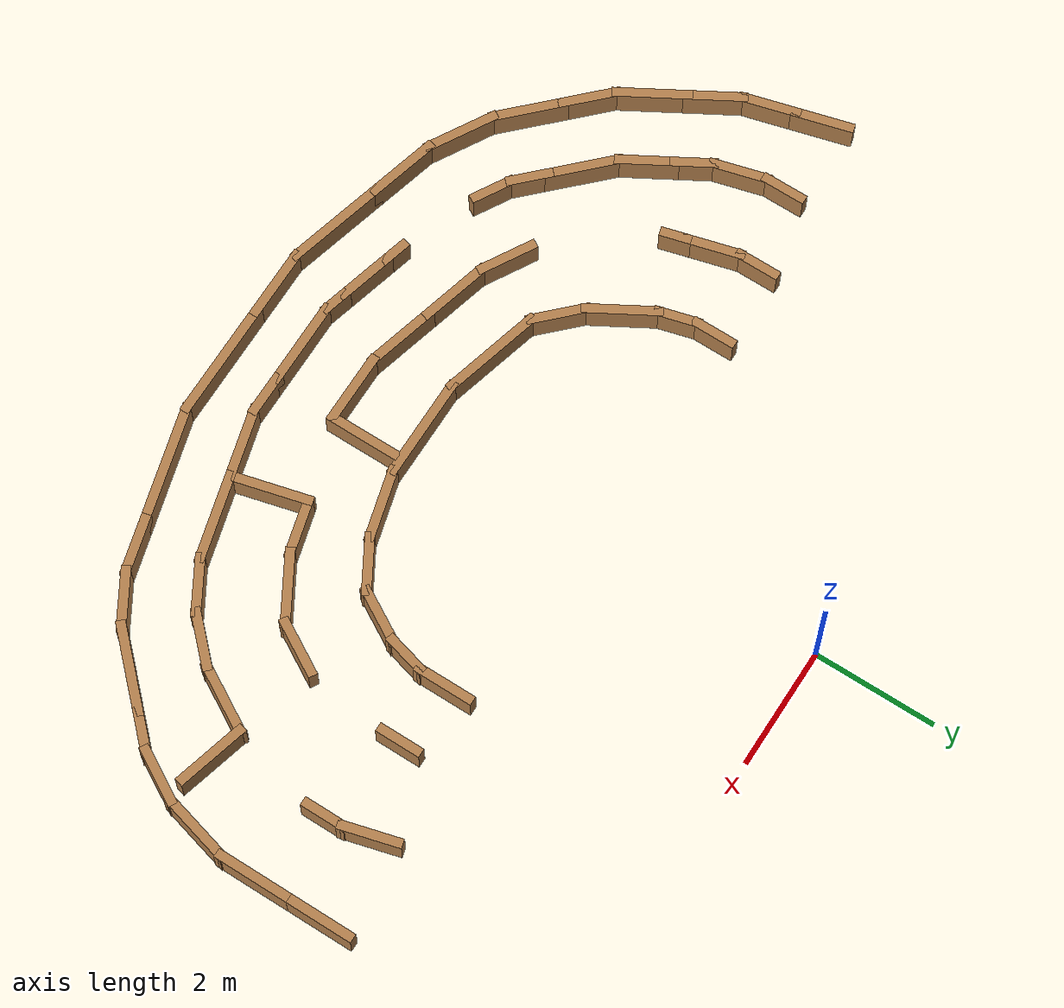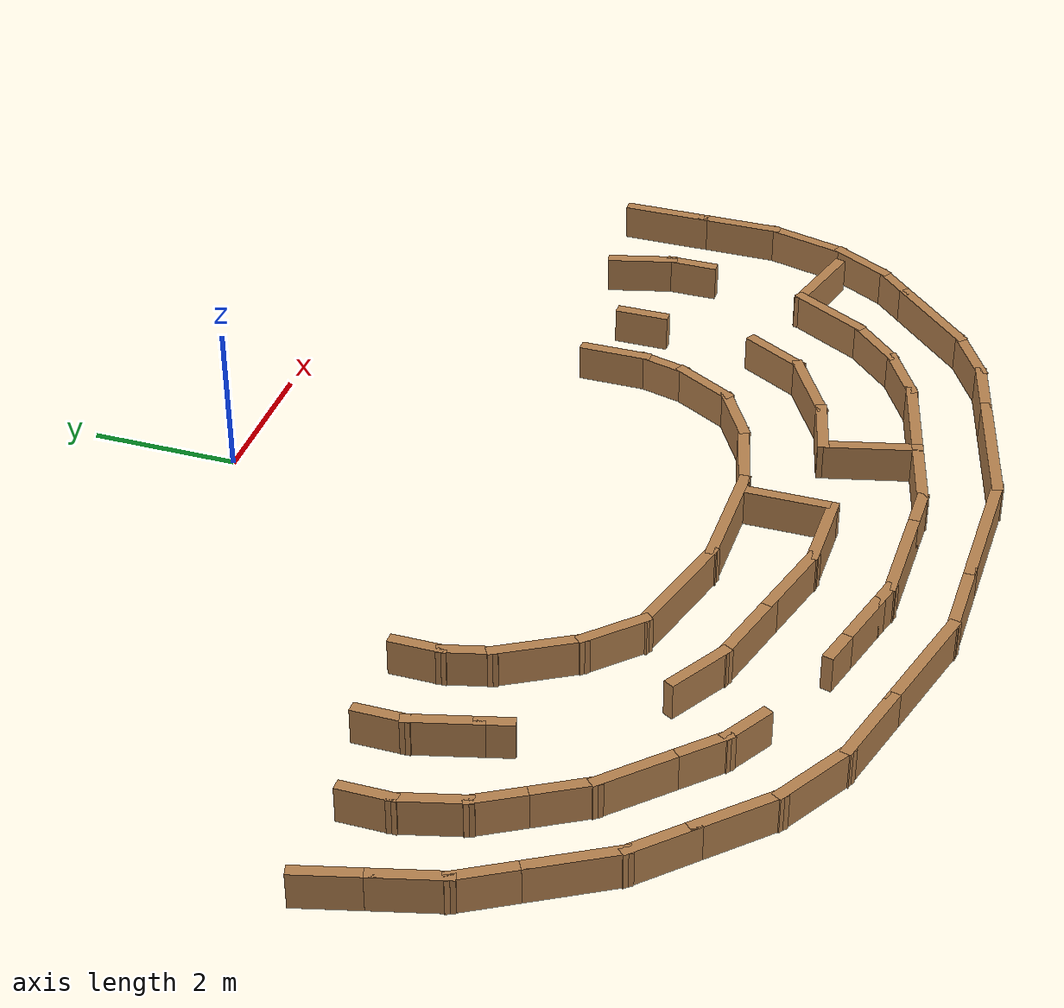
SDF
<sdf version="1.6">
 <model name="maze-S">
  <pose>0.044345 -0.028084 0 0 -0 0</pose>
  <link name="Wall_237">
   <collision name="Wall_237_Collision">
    <geometry><box><size>1.25 0.15 0.5</size></box></geometry>
    <pose>0 0 0.25 0 -0 0</pose>
   </collision>
   <visual name="Wall_237_Visual">
    <pose>0 0 0.25 0 -0 0</pose>
    <geometry><box><size>1.25 0.15 0.5</size></box></geometry>
    <material>
     <script><uri>file://media/materials/scripts/gazebo.material</uri><name>Gazebo/Wood</name></script>
     <ambient>1 1 1 1</ambient>
    </material>
    <meta><layer>0</layer></meta>
   </visual>
   <pose>7.30622 -3.88871 0 0 -0 -1.5708</pose>
  </link>
  <link name="Wall_238">
   <collision name="Wall_238_Collision">
    <geometry><box><size>1.25 0.15 0.5</size></box></geometry>
    <pose>0 0 0.25 0 -0 0</pose>
   </collision>
   <visual name="Wall_238_Visual">
    <pose>0 0 0.25 0 -0 0</pose>
    <geometry><box><size>1.25 0.15 0.5</size></box></geometry>
    <material>
     <script><uri>file://media/materials/scripts/gazebo.material</uri><name>Gazebo/Wood</name></script>
     <ambient>1 1 1 1</ambient>
    </material>
    <meta><layer>0</layer></meta>
   </visual>
   <pose>7.30622 -4.98872 0 0 -0 -1.5708</pose>
  </link>
  <link name="Wall_239">
   <collision name="Wall_239_Collision">
    <geometry><box><size>1.25 0.15 0.5</size></box></geometry>
    <pose>0 0 0.25 0 -0 0</pose>
   </collision>
   <visual name="Wall_239_Visual">
    <pose>0 0 0.25 0 -0 0</pose>
    <geometry><box><size>1.25 0.15 0.5</size></box></geometry>
    <material>
     <script><uri>file://media/materials/scripts/gazebo.material</uri><name>Gazebo/Wood</name></script>
     <ambient>1 1 1 1</ambient>
    </material>
    <meta><layer>0</layer></meta>
   </visual>
   <pose>7.16387 -6.06997 0 0 -0 -1.8326</pose>
  </link>
  <link name="Wall_240">
   <collision name="Wall_240_Collision">
    <geometry><box><size>1 0.15 0.5</size></box></geometry>
    <pose>0 0 0.25 0 -0 0</pose>
   </collision>
   <visual name="Wall_240_Visual">
    <pose>0 0 0.25 0 -0 0</pose>
    <geometry><box><size>1 0.15 0.5</size></box></geometry>
    <material>
     <script><uri>file://media/materials/scripts/gazebo.material</uri><name>Gazebo/Wood</name></script>
     <ambient>1 1 1 1</ambient>
    </material>
    <meta><layer>0</layer></meta>
   </visual>
   <pose>6.80902 -6.96929 0 0 -0 -2.0944</pose>
  </link>
  <link name="Wall_241">
   <collision name="Wall_241_Collision">
    <geometry><box><size>0.75 0.15 0.5</size></box></geometry>
    <pose>0 0 0.25 0 -0 0</pose>
   </collision>
   <visual name="Wall_241_Visual">
    <pose>0 0 0.25 0 -0 0</pose>
    <geometry><box><size>0.75 0.15 0.5</size></box></geometry>
    <material>
     <script><uri>file://media/materials/scripts/gazebo.material</uri><name>Gazebo/Wood</name></script>
     <ambient>1 1 1 1</ambient>
    </material>
    <meta><layer>0</layer></meta>
   </visual>
   <pose>6.38439 -7.54949 0 0 -0 -2.35619</pose>
  </link>
  <link name="Wall_242">
   <collision name="Wall_242_Collision">
    <geometry><box><size>1.5 0.15 0.5</size></box></geometry>
    <pose>0 0 0.25 0 -0 0</pose>
   </collision>
   <visual name="Wall_242_Visual">
    <pose>0 0 0.25 0 -0 0</pose>
    <geometry><box><size>1.5 0.15 0.5</size></box></geometry>
    <material>
     <script><uri>file://media/materials/scripts/gazebo.material</uri><name>Gazebo/Wood</name></script>
     <ambient>1 1 1 1</ambient>
    </material>
    <meta><layer>0</layer></meta>
   </visual>
   <pose>5.69496 -8.23892 0 0 -0 -2.35619</pose>
  </link>
  <link name="Wall_243">
   <collision name="Wall_243_Collision">
    <geometry><box><size>1 0.15 0.5</size></box></geometry>
    <pose>0 0 0.25 0 -0 0</pose>
   </collision>
   <visual name="Wall_243_Visual">
    <pose>0 0 0.25 0 -0 0</pose>
    <geometry><box><size>1 0.15 0.5</size></box></geometry>
    <material>
     <script><uri>file://media/materials/scripts/gazebo.material</uri><name>Gazebo/Wood</name></script>
     <ambient>1 1 1 1</ambient>
    </material>
    <meta><layer>0</layer></meta>
   </visual>
   <pose>4.8496 -8.92871 0 0 -0 -2.61799</pose>
  </link>
  <link name="Wall_244">
   <collision name="Wall_244_Collision">
    <geometry><box><size>1 0.15 0.5</size></box></geometry>
    <pose>0 0 0.25 0 -0 0</pose>
   </collision>
   <visual name="Wall_244_Visual">
    <pose>0 0 0.25 0 -0 0</pose>
    <geometry><box><size>1 0.15 0.5</size></box></geometry>
    <material>
     <script><uri>file://media/materials/scripts/gazebo.material</uri><name>Gazebo/Wood</name></script>
     <ambient>1 1 1 1</ambient>
    </material>
    <meta><layer>0</layer></meta>
   </visual>
   <pose>4.07102 -9.25121 0 0 -0 -2.87979</pose>
  </link>
  <link name="Wall_245">
   <collision name="Wall_245_Collision">
    <geometry><box><size>2 0.15 0.5</size></box></geometry>
    <pose>0 0 0.25 0 -0 0</pose>
   </collision>
   <visual name="Wall_245_Visual">
    <pose>0 0 0.25 0 -0 0</pose>
    <geometry><box><size>2 0.15 0.5</size></box></geometry>
    <material>
     <script><uri>file://media/materials/scripts/gazebo.material</uri><name>Gazebo/Wood</name></script>
     <ambient>1 1 1 1</ambient>
    </material>
    <meta><layer>0</layer></meta>
   </visual>
   <pose>2.76702 -9.60062 0 0 -0 -2.87979</pose>
  </link>
  <link name="Wall_246">
   <collision name="Wall_246_Collision">
    <geometry><box><size>2 0.15 0.5</size></box></geometry>
    <pose>0 0 0.25 0 -0 0</pose>
   </collision>
   <visual name="Wall_246_Visual">
    <pose>0 0 0.25 0 -0 0</pose>
    <geometry><box><size>2 0.15 0.5</size></box></geometry>
    <material>
     <script><uri>file://media/materials/scripts/gazebo.material</uri><name>Gazebo/Wood</name></script>
     <ambient>1 1 1 1</ambient>
    </material>
    <meta><layer>0</layer></meta>
   </visual>
   <pose>0.948541 -9.84002 0 0 -0 3.14159</pose>
  </link>
  <link name="Wall_247">
   <collision name="Wall_247_Collision">
    <geometry><box><size>1.25 0.15 0.5</size></box></geometry>
    <pose>0 0 0.25 0 -0 0</pose>
   </collision>
   <visual name="Wall_247_Visual">
    <pose>0 0 0.25 0 -0 0</pose>
    <geometry><box><size>1.25 0.15 0.5</size></box></geometry>
    <material>
     <script><uri>file://media/materials/scripts/gazebo.material</uri><name>Gazebo/Wood</name></script>
     <ambient>1 1 1 1</ambient>
    </material>
    <meta><layer>0</layer></meta>
   </visual>
   <pose>-0.526459 -9.84002 0 0 -0 3.14159</pose>
  </link>
  <link name="Wall_248">
   <collision name="Wall_248_Collision">
    <geometry><box><size>1.75 0.15 0.5</size></box></geometry>
    <pose>0 0 0.25 0 -0 0</pose>
   </collision>
   <visual name="Wall_248_Visual">
    <pose>0 0 0.25 0 -0 0</pose>
    <geometry><box><size>1.75 0.15 0.5</size></box></geometry>
    <material>
     <script><uri>file://media/materials/scripts/gazebo.material</uri><name>Gazebo/Wood</name></script>
     <ambient>1 1 1 1</ambient>
    </material>
    <meta><layer>0</layer></meta>
   </visual>
   <pose>-1.8492 -9.63297 0 0 -0 2.87979</pose>
  </link>
  <link name="Wall_249">
   <collision name="Wall_249_Collision">
    <geometry><box><size>1.25 0.15 0.5</size></box></geometry>
    <pose>0 0 0.25 0 -0 0</pose>
   </collision>
   <visual name="Wall_249_Visual">
    <pose>0 0 0.25 0 -0 0</pose>
    <geometry><box><size>1.25 0.15 0.5</size></box></geometry>
    <material>
     <script><uri>file://media/materials/scripts/gazebo.material</uri><name>Gazebo/Wood</name></script>
     <ambient>1 1 1 1</ambient>
    </material>
    <meta><layer>0</layer></meta>
   </visual>
   <pose>-3.1532 -9.28356 0 0 -0 2.87979</pose>
  </link>
  <link name="Wall_250">
   <collision name="Wall_250_Collision">
    <geometry><box><size>1.25 0.15 0.5</size></box></geometry>
    <pose>0 0 0.25 0 -0 0</pose>
   </collision>
   <visual name="Wall_250_Visual">
    <pose>0 0 0.25 0 -0 0</pose>
    <geometry><box><size>1.25 0.15 0.5</size></box></geometry>
    <material>
     <script><uri>file://media/materials/scripts/gazebo.material</uri><name>Gazebo/Wood</name></script>
     <ambient>1 1 1 1</ambient>
    </material>
    <meta><layer>0</layer></meta>
   </visual>
   <pose>-4.16077 -8.86621 0 0 -0 2.61799</pose>
  </link>
  <link name="Wall_251">
   <collision name="Wall_251_Collision">
    <geometry><box><size>1.25 0.15 0.5</size></box></geometry>
    <pose>0 0 0.25 0 -0 0</pose>
   </collision>
   <visual name="Wall_251_Visual">
    <pose>0 0 0.25 0 -0 0</pose>
    <geometry><box><size>1.25 0.15 0.5</size></box></geometry>
    <material>
     <script><uri>file://media/materials/scripts/gazebo.material</uri><name>Gazebo/Wood</name></script>
     <ambient>1 1 1 1</ambient>
    </material>
    <meta><layer>0</layer></meta>
   </visual>
   <pose>-5.02599 -8.2023 0 0 -0 2.35619</pose>
  </link>
  <link name="Wall_252">
   <collision name="Wall_252_Collision">
    <geometry><box><size>1 0.15 0.5</size></box></geometry>
    <pose>0 0 0.25 0 -0 0</pose>
   </collision>
   <visual name="Wall_252_Visual">
    <pose>0 0 0.25 0 -0 0</pose>
    <geometry><box><size>1 0.15 0.5</size></box></geometry>
    <material>
     <script><uri>file://media/materials/scripts/gazebo.material</uri><name>Gazebo/Wood</name></script>
     <ambient>1 1 1 1</ambient>
    </material>
    <meta><layer>0</layer></meta>
   </visual>
   <pose>-5.71542 -7.51288 0 0 -0 2.35619</pose>
  </link>
  <link name="Wall_253">
   <collision name="Wall_253_Collision">
    <geometry><box><size>1.25 0.15 0.5</size></box></geometry>
    <pose>0 0 0.25 0 -0 0</pose>
   </collision>
   <visual name="Wall_253_Visual">
    <pose>0 0 0.25 0 -0 0</pose>
    <geometry><box><size>1.25 0.15 0.5</size></box></geometry>
    <material>
     <script><uri>file://media/materials/scripts/gazebo.material</uri><name>Gazebo/Wood</name></script>
     <ambient>1 1 1 1</ambient>
    </material>
    <meta><layer>0</layer></meta>
   </visual>
   <pose>-6.29094 -6.73604 0 0 -0 2.0944</pose>
  </link>
  <link name="Wall_254">
   <collision name="Wall_254_Collision">
    <geometry><box><size>1 0.15 0.5</size></box></geometry>
    <pose>0 0 0.25 0 -0 0</pose>
   </collision>
   <visual name="Wall_254_Visual">
    <pose>0 0 0.25 0 -0 0</pose>
    <geometry><box><size>1 0.15 0.5</size></box></geometry>
    <material>
     <script><uri>file://media/materials/scripts/gazebo.material</uri><name>Gazebo/Wood</name></script>
     <ambient>1 1 1 1</ambient>
    </material>
    <meta><layer>0</layer></meta>
   </visual>
   <pose>-6.77844 -5.89167 0 0 -0 2.0944</pose>
  </link>
  <link name="Wall_255">
   <collision name="Wall_255_Collision">
    <geometry><box><size>1 0.15 0.5</size></box></geometry>
    <pose>0 0 0.25 0 -0 0</pose>
   </collision>
   <visual name="Wall_255_Visual">
    <pose>0 0 0.25 0 -0 0</pose>
    <geometry><box><size>1 0.15 0.5</size></box></geometry>
    <material>
     <script><uri>file://media/materials/scripts/gazebo.material</uri><name>Gazebo/Wood</name></script>
     <ambient>1 1 1 1</ambient>
    </material>
    <meta><layer>0</layer></meta>
   </visual>
   <pose>-7.10094 -5.11309 0 0 -0 1.8326</pose>
  </link>
  <link name="Wall_256">
   <collision name="Wall_256_Collision">
    <geometry><box><size>1 0.15 0.5</size></box></geometry>
    <pose>0 0 0.25 0 -0 0</pose>
   </collision>
   <visual name="Wall_256_Visual">
    <pose>0 0 0.25 0 -0 0</pose>
    <geometry><box><size>1 0.15 0.5</size></box></geometry>
    <material>
     <script><uri>file://media/materials/scripts/gazebo.material</uri><name>Gazebo/Wood</name></script>
     <ambient>1 1 1 1</ambient>
    </material>
    <meta><layer>0</layer></meta>
   </visual>
   <pose>-7.32094 -4.29205 0 0 -0 1.8326</pose>
  </link>
  <link name="Wall_260">
   <collision name="Wall_260_Collision">
    <geometry><box><size>0.75 0.15 0.5</size></box></geometry>
    <pose>0 0 0.25 0 -0 0</pose>
   </collision>
   <visual name="Wall_260_Visual">
    <pose>0 0 0.25 0 -0 0</pose>
    <geometry><box><size>0.75 0.15 0.5</size></box></geometry>
    <material>
     <script><uri>file://media/materials/scripts/gazebo.material</uri><name>Gazebo/Wood</name></script>
     <ambient>1 1 1 1</ambient>
    </material>
    <meta><layer>0</layer></meta>
   </visual>
   <pose>-6.01442 -4.19915 0 0 -0 -1.5708</pose>
  </link>
  <link name="Wall_261">
   <collision name="Wall_261_Collision">
    <geometry><box><size>1 0.15 0.5</size></box></geometry>
    <pose>0 0 0.25 0 -0 0</pose>
   </collision>
   <visual name="Wall_261_Visual">
    <pose>0 0 0.25 0 -0 0</pose>
    <geometry><box><size>1 0.15 0.5</size></box></geometry>
    <material>
     <script><uri>file://media/materials/scripts/gazebo.material</uri><name>Gazebo/Wood</name></script>
     <ambient>1 1 1 1</ambient>
    </material>
    <meta><layer>0</layer></meta>
   </visual>
   <pose>-5.90442 -4.90967 0 0 -0 -1.309</pose>
  </link>
  <link name="Wall_262">
   <collision name="Wall_262_Collision">
    <geometry><box><size>0.75 0.15 0.5</size></box></geometry>
    <pose>0 0 0.25 0 -0 0</pose>
   </collision>
   <visual name="Wall_262_Visual">
    <pose>0 0 0.25 0 -0 0</pose>
    <geometry><box><size>0.75 0.15 0.5</size></box></geometry>
    <material>
     <script><uri>file://media/materials/scripts/gazebo.material</uri><name>Gazebo/Wood</name></script>
     <ambient>1 1 1 1</ambient>
    </material>
    <meta><layer>0</layer></meta>
   </visual>
   <pose>-5.64442 -5.58 0 0 -0 -1.0472</pose>
  </link>
  <link name="Wall_263">
   <collision name="Wall_263_Collision">
    <geometry><box><size>1 0.15 0.5</size></box></geometry>
    <pose>0 0 0.25 0 -0 0</pose>
   </collision>
   <visual name="Wall_263_Visual">
    <pose>0 0 0.25 0 -0 0</pose>
    <geometry><box><size>1 0.15 0.5</size></box></geometry>
    <material>
     <script><uri>file://media/materials/scripts/gazebo.material</uri><name>Gazebo/Wood</name></script>
     <ambient>1 1 1 1</ambient>
    </material>
    <meta><layer>0</layer></meta>
   </visual>
   <pose>-5.28192 -6.20786 0 0 -0 -1.0472</pose>
  </link>
  <link name="Wall_264">
   <collision name="Wall_264_Collision">
    <geometry><box><size>1.25 0.15 0.5</size></box></geometry>
    <pose>0 0 0.25 0 -0 0</pose>
   </collision>
   <visual name="Wall_264_Visual">
    <pose>0 0 0.25 0 -0 0</pose>
    <geometry><box><size>1.25 0.15 0.5</size></box></geometry>
    <material>
     <script><uri>file://media/materials/scripts/gazebo.material</uri><name>Gazebo/Wood</name></script>
     <ambient>1 1 1 1</ambient>
    </material>
    <meta><layer>0</layer></meta>
   </visual>
   <pose>-4.68051 -6.96483 0 0 -0 -0.785398</pose>
  </link>
  <link name="Wall_265">
   <collision name="Wall_265_Collision">
    <geometry><box><size>0.75 0.15 0.5</size></box></geometry>
    <pose>0 0 0.25 0 -0 0</pose>
   </collision>
   <visual name="Wall_265_Visual">
    <pose>0 0 0.25 0 -0 0</pose>
    <geometry><box><size>0.75 0.15 0.5</size></box></geometry>
    <material>
     <script><uri>file://media/materials/scripts/gazebo.material</uri><name>Gazebo/Wood</name></script>
     <ambient>1 1 1 1</ambient>
    </material>
    <meta><layer>0</layer></meta>
   </visual>
   <pose>-4.07947 -7.56588 0 0 -0 -0.785398</pose>
  </link>
  <link name="Wall_266">
   <collision name="Wall_266_Collision">
    <geometry><box><size>0.75 0.15 0.5</size></box></geometry>
    <pose>0 0 0.25 0 -0 0</pose>
   </collision>
   <visual name="Wall_266_Visual">
    <pose>0 0 0.25 0 -0 0</pose>
    <geometry><box><size>0.75 0.15 0.5</size></box></geometry>
    <material>
     <script><uri>file://media/materials/scripts/gazebo.material</uri><name>Gazebo/Wood</name></script>
     <ambient>1 1 1 1</ambient>
    </material>
    <meta><layer>0</layer></meta>
   </visual>
   <pose>-3.60753 -7.92801 0 0 -0 -0.523599</pose>
  </link>
  <link name="Wall_268">
   <collision name="Wall_268_Collision">
    <geometry><box><size>0.5 0.15 0.5</size></box></geometry>
    <pose>0 0 0.25 0 -0 0</pose>
   </collision>
   <visual name="Wall_268_Visual">
    <pose>0 0 0.25 0 -0 0</pose>
    <geometry><box><size>0.5 0.15 0.5</size></box></geometry>
    <material>
     <script><uri>file://media/materials/scripts/gazebo.material</uri><name>Gazebo/Wood</name></script>
     <ambient>1 1 1 1</ambient>
    </material>
    <meta><layer>0</layer></meta>
   </visual>
   <pose>-1.92153 -8.61333 0 0 -0 -0.261799</pose>
  </link>
  <link name="Wall_269">
   <collision name="Wall_269_Collision">
    <geometry><box><size>1 0.15 0.5</size></box></geometry>
    <pose>0 0 0.25 0 -0 0</pose>
   </collision>
   <visual name="Wall_269_Visual">
    <pose>0 0 0.25 0 -0 0</pose>
    <geometry><box><size>1 0.15 0.5</size></box></geometry>
    <material>
     <script><uri>file://media/materials/scripts/gazebo.material</uri><name>Gazebo/Wood</name></script>
     <ambient>1 1 1 1</ambient>
    </material>
    <meta><layer>0</layer></meta>
   </visual>
   <pose>-1.34197 -8.76862 0 0 -0 -0.261799</pose>
  </link>
  <link name="Wall_270">
   <collision name="Wall_270_Collision">
    <geometry><box><size>0.5 0.15 0.5</size></box></geometry>
    <pose>0 0 0.25 0 -0 0</pose>
   </collision>
   <visual name="Wall_270_Visual">
    <pose>0 0 0.25 0 -0 0</pose>
    <geometry><box><size>0.5 0.15 0.5</size></box></geometry>
    <material>
     <script><uri>file://media/materials/scripts/gazebo.material</uri><name>Gazebo/Wood</name></script>
     <ambient>1 1 1 1</ambient>
    </material>
    <meta><layer>0</layer></meta>
   </visual>
   <pose>-0.762415 -8.92391 0 0 -0 -0.261799</pose>
  </link>
  <link name="Wall_271">
   <collision name="Wall_271_Collision">
    <geometry><box><size>1.5 0.15 0.5</size></box></geometry>
    <pose>0 0 0.25 0 -0 0</pose>
   </collision>
   <visual name="Wall_271_Visual">
    <pose>0 0 0.25 0 -0 0</pose>
    <geometry><box><size>1.5 0.15 0.5</size></box></geometry>
    <material>
     <script><uri>file://media/materials/scripts/gazebo.material</uri><name>Gazebo/Wood</name></script>
     <ambient>1 1 1 1</ambient>
    </material>
    <meta><layer>0</layer></meta>
   </visual>
   <pose>0.081622 -8.96921 0 0 -0 0</pose>
  </link>
  <link name="Wall_272">
   <collision name="Wall_272_Collision">
    <geometry><box><size>0.75 0.15 0.5</size></box></geometry>
    <pose>0 0 0.25 0 -0 0</pose>
   </collision>
   <visual name="Wall_272_Visual">
    <pose>0 0 0.25 0 -0 0</pose>
    <geometry><box><size>0.75 0.15 0.5</size></box></geometry>
    <material>
     <script><uri>file://media/materials/scripts/gazebo.material</uri><name>Gazebo/Wood</name></script>
     <ambient>1 1 1 1</ambient>
    </material>
    <meta><layer>0</layer></meta>
   </visual>
   <pose>1.05662 -8.96921 0 0 -0 0</pose>
  </link>
  <link name="Wall_273">
   <collision name="Wall_273_Collision">
    <geometry><box><size>1.25 0.15 0.5</size></box></geometry>
    <pose>0 0 0.25 0 -0 0</pose>
   </collision>
   <visual name="Wall_273_Visual">
    <pose>0 0 0.25 0 -0 0</pose>
    <geometry><box><size>1.25 0.15 0.5</size></box></geometry>
    <material>
     <script><uri>file://media/materials/scripts/gazebo.material</uri><name>Gazebo/Wood</name></script>
     <ambient>1 1 1 1</ambient>
    </material>
    <meta><layer>0</layer></meta>
   </visual>
   <pose>1.88788 -8.82686 0 0 -0 0.261799</pose>
  </link>
  <link name="Wall_274">
   <collision name="Wall_274_Collision">
    <geometry><box><size>1.5 0.15 0.5</size></box></geometry>
    <pose>0 0 0.25 0 -0 0</pose>
   </collision>
   <visual name="Wall_274_Visual">
    <pose>0 0 0.25 0 -0 0</pose>
    <geometry><box><size>1.5 0.15 0.5</size></box></geometry>
    <material>
     <script><uri>file://media/materials/scripts/gazebo.material</uri><name>Gazebo/Wood</name></script>
     <ambient>1 1 1 1</ambient>
    </material>
    <meta><layer>0</layer></meta>
   </visual>
   <pose>3.07114 -8.50981 0 0 -0 0.261799</pose>
  </link>
  <link name="Wall_275">
   <collision name="Wall_275_Collision">
    <geometry><box><size>1 0.15 0.5</size></box></geometry>
    <pose>0 0 0.25 0 -0 0</pose>
   </collision>
   <visual name="Wall_275_Visual">
    <pose>0 0 0.25 0 -0 0</pose>
    <geometry><box><size>1 0.15 0.5</size></box></geometry>
    <material>
     <script><uri>file://media/materials/scripts/gazebo.material</uri><name>Gazebo/Wood</name></script>
     <ambient>1 1 1 1</ambient>
    </material>
    <meta><layer>0</layer></meta>
   </visual>
   <pose>4.0912 -8.1226 0 0 -0 0.523599</pose>
  </link>
  <link name="Wall_276">
   <collision name="Wall_276_Collision">
    <geometry><box><size>1 0.15 0.5</size></box></geometry>
    <pose>0 0 0.25 0 -0 0</pose>
   </collision>
   <visual name="Wall_276_Visual">
    <pose>0 0 0.25 0 -0 0</pose>
    <geometry><box><size>1 0.15 0.5</size></box></geometry>
    <material>
     <script><uri>file://media/materials/scripts/gazebo.material</uri><name>Gazebo/Wood</name></script>
     <ambient>1 1 1 1</ambient>
    </material>
    <meta><layer>0</layer></meta>
   </visual>
   <pose>4.75978 -7.60958 0 0 -0 0.785398</pose>
  </link>
  <link name="Wall_277">
   <collision name="Wall_277_Collision">
    <geometry><box><size>1.25 0.15 0.5</size></box></geometry>
    <pose>0 0 0.25 0 -0 0</pose>
   </collision>
   <visual name="Wall_277_Visual">
    <pose>0 0 0.25 0 -0 0</pose>
    <geometry><box><size>1.25 0.15 0.5</size></box></geometry>
    <material>
     <script><uri>file://media/materials/scripts/gazebo.material</uri><name>Gazebo/Wood</name></script>
     <ambient>1 1 1 1</ambient>
    </material>
    <meta><layer>0</layer></meta>
   </visual>
   <pose>5.3353 -6.83275 0 0 -0 1.0472</pose>
  </link>
  <link name="Wall_278">
   <collision name="Wall_278_Collision">
    <geometry><box><size>1.25 0.15 0.5</size></box></geometry>
    <pose>0 0 0.25 0 -0 0</pose>
   </collision>
   <visual name="Wall_278_Visual">
    <pose>0 0 0.25 0 -0 0</pose>
    <geometry><box><size>1.25 0.15 0.5</size></box></geometry>
    <material>
     <script><uri>file://media/materials/scripts/gazebo.material</uri><name>Gazebo/Wood</name></script>
     <ambient>1 1 1 1</ambient>
    </material>
    <meta><layer>0</layer></meta>
   </visual>
   <pose>6.14156 -6.49878 0 0 -0 -0.261799</pose>
  </link>
  <link name="Wall_280">
   <collision name="Wall_280_Collision">
    <geometry><box><size>1 0.15 0.5</size></box></geometry>
    <pose>0 0 0.25 0 -0 0</pose>
   </collision>
   <visual name="Wall_280_Visual">
    <pose>0 0 0.25 0 -0 0</pose>
    <geometry><box><size>1 0.15 0.5</size></box></geometry>
    <material>
     <script><uri>file://media/materials/scripts/gazebo.material</uri><name>Gazebo/Wood</name></script>
     <ambient>1 1 1 1</ambient>
    </material>
    <meta><layer>0</layer></meta>
   </visual>
   <pose>4.09982 -6.35061 0 0 -0 -2.0944</pose>
  </link>
  <link name="Wall_281">
   <collision name="Wall_281_Collision">
    <geometry><box><size>1.25 0.15 0.5</size></box></geometry>
    <pose>0 0 0.25 0 -0 0</pose>
   </collision>
   <visual name="Wall_281_Visual">
    <pose>0 0 0.25 0 -0 0</pose>
    <geometry><box><size>1.25 0.15 0.5</size></box></geometry>
    <material>
     <script><uri>file://media/materials/scripts/gazebo.material</uri><name>Gazebo/Wood</name></script>
     <ambient>1 1 1 1</ambient>
    </material>
    <meta><layer>0</layer></meta>
   </visual>
   <pose>3.41101 -6.99367 0 0 -0 -2.61799</pose>
  </link>
  <link name="Wall_282">
   <collision name="Wall_282_Collision">
    <geometry><box><size>1 0.15 0.5</size></box></geometry>
    <pose>0 0 0.25 0 -0 0</pose>
   </collision>
   <visual name="Wall_282_Visual">
    <pose>0 0 0.25 0 -0 0</pose>
    <geometry><box><size>1 0.15 0.5</size></box></geometry>
    <material>
     <script><uri>file://media/materials/scripts/gazebo.material</uri><name>Gazebo/Wood</name></script>
     <ambient>1 1 1 1</ambient>
    </material>
    <meta><layer>0</layer></meta>
   </visual>
   <pose>2.52417 -7.37867 0 0 -0 -2.87979</pose>
  </link>
  <link name="Wall_283">
   <collision name="Wall_283_Collision">
    <geometry><box><size>1.38424 0.15 0.5</size></box></geometry>
    <pose>0 0 0.25 0 -0 0</pose>
   </collision>
   <visual name="Wall_283_Visual">
    <pose>0 0 0.25 0 -0 0</pose>
    <geometry><box><size>1.38424 0.15 0.5</size></box></geometry>
    <material>
     <script><uri>file://media/materials/scripts/gazebo.material</uri><name>Gazebo/Wood</name></script>
     <ambient>1 1 1 1</ambient>
    </material>
    <meta><layer>0</layer></meta>
   </visual>
   <pose>2.2664 -8.08659 0 0 -0 -1.32069</pose>
  </link>
  <link name="Wall_287">
   <collision name="Wall_287_Collision">
    <geometry><box><size>0.75 0.15 0.5</size></box></geometry>
    <pose>0 0 0.25 0 -0 0</pose>
   </collision>
   <visual name="Wall_287_Visual">
    <pose>0 0 0.25 0 -0 0</pose>
    <geometry><box><size>0.75 0.15 0.5</size></box></geometry>
    <material>
     <script><uri>file://media/materials/scripts/gazebo.material</uri><name>Gazebo/Wood</name></script>
     <ambient>1 1 1 1</ambient>
    </material>
    <meta><layer>0</layer></meta>
   </visual>
   <pose>-4.72168 -3.87957 0 0 -0 -1.5708</pose>
  </link>
  <link name="Wall_288">
   <collision name="Wall_288_Collision">
    <geometry><box><size>1 0.15 0.5</size></box></geometry>
    <pose>0 0 0.25 0 -0 0</pose>
   </collision>
   <visual name="Wall_288_Visual">
    <pose>0 0 0.25 0 -0 0</pose>
    <geometry><box><size>1 0.15 0.5</size></box></geometry>
    <material>
     <script><uri>file://media/materials/scripts/gazebo.material</uri><name>Gazebo/Wood</name></script>
     <ambient>1 1 1 1</ambient>
    </material>
    <meta><layer>0</layer></meta>
   </visual>
   <pose>-4.61168 -4.59009 0 0 -0 -1.309</pose>
  </link>
  <link name="Wall_289">
   <collision name="Wall_289_Collision">
    <geometry><box><size>0.5 0.15 0.5</size></box></geometry>
    <pose>0 0 0.25 0 -0 0</pose>
   </collision>
   <visual name="Wall_289_Visual">
    <pose>0 0 0.25 0 -0 0</pose>
    <geometry><box><size>0.5 0.15 0.5</size></box></geometry>
    <material>
     <script><uri>file://media/materials/scripts/gazebo.material</uri><name>Gazebo/Wood</name></script>
     <ambient>1 1 1 1</ambient>
    </material>
    <meta><layer>0</layer></meta>
   </visual>
   <pose>-4.45639 -5.16964 0 0 -0 -1.309</pose>
  </link>
  <link name="Wall_292">
   <collision name="Wall_292_Collision">
    <geometry><box><size>1 0.15 0.5</size></box></geometry>
    <pose>0 0 0.25 0 -0 0</pose>
   </collision>
   <visual name="Wall_292_Visual">
    <pose>0 0 0.25 0 -0 0</pose>
    <geometry><box><size>1 0.15 0.5</size></box></geometry>
    <material>
     <script><uri>file://media/materials/scripts/gazebo.material</uri><name>Gazebo/Wood</name></script>
     <ambient>1 1 1 1</ambient>
    </material>
    <meta><layer>0</layer></meta>
   </visual>
   <pose>-2.77191 -7.13799 0 0 -0 -0.523599</pose>
  </link>
  <link name="Wall_293">
   <collision name="Wall_293_Collision">
    <geometry><box><size>1.25 0.15 0.5</size></box></geometry>
    <pose>0 0 0.25 0 -0 0</pose>
   </collision>
   <visual name="Wall_293_Visual">
    <pose>0 0 0.25 0 -0 0</pose>
    <geometry><box><size>1.25 0.15 0.5</size></box></geometry>
    <material>
     <script><uri>file://media/materials/scripts/gazebo.material</uri><name>Gazebo/Wood</name></script>
     <ambient>1 1 1 1</ambient>
    </material>
    <meta><layer>0</layer></meta>
   </visual>
   <pose>-1.87259 -7.49284 0 0 -0 -0.261799</pose>
  </link>
  <link name="Wall_294">
   <collision name="Wall_294_Collision">
    <geometry><box><size>1.25 0.15 0.5</size></box></geometry>
    <pose>0 0 0.25 0 -0 0</pose>
   </collision>
   <visual name="Wall_294_Visual">
    <pose>0 0 0.25 0 -0 0</pose>
    <geometry><box><size>1.25 0.15 0.5</size></box></geometry>
    <material>
     <script><uri>file://media/materials/scripts/gazebo.material</uri><name>Gazebo/Wood</name></script>
     <ambient>1 1 1 1</ambient>
    </material>
    <meta><layer>0</layer></meta>
   </visual>
   <pose>-0.810067 -7.77754 0 0 -0 -0.261799</pose>
  </link>
  <link name="Wall_295">
   <collision name="Wall_295_Collision">
    <geometry><box><size>1.25 0.15 0.5</size></box></geometry>
    <pose>0 0 0.25 0 -0 0</pose>
   </collision>
   <visual name="Wall_295_Visual">
    <pose>0 0 0.25 0 -0 0</pose>
    <geometry><box><size>1.25 0.15 0.5</size></box></geometry>
    <material>
     <script><uri>file://media/materials/scripts/gazebo.material</uri><name>Gazebo/Wood</name></script>
     <ambient>1 1 1 1</ambient>
    </material>
    <meta><layer>0</layer></meta>
   </visual>
   <pose>0.271192 -7.9199 0 0 -0 0</pose>
  </link>
  <link name="Wall_296">
   <collision name="Wall_296_Collision">
    <geometry><box><size>1.25 0.15 0.5</size></box></geometry>
    <pose>0 0 0.25 0 -0 0</pose>
   </collision>
   <visual name="Wall_296_Visual">
    <pose>0 0 0.25 0 -0 0</pose>
    <geometry><box><size>1.25 0.15 0.5</size></box></geometry>
    <material>
     <script><uri>file://media/materials/scripts/gazebo.material</uri><name>Gazebo/Wood</name></script>
     <ambient>1 1 1 1</ambient>
    </material>
    <meta><layer>0</layer></meta>
   </visual>
   <pose>0.821192 -7.3699 0 0 -0 1.5708</pose>
  </link>
  <link name="Wall_298">
   <collision name="Wall_298_Collision">
    <geometry><box><size>0.75 0.15 0.5</size></box></geometry>
    <pose>0 0 0.25 0 -0 0</pose>
   </collision>
   <visual name="Wall_298_Visual">
    <pose>0 0 0.25 0 -0 0</pose>
    <geometry><box><size>0.75 0.15 0.5</size></box></geometry>
    <material>
     <script><uri>file://media/materials/scripts/gazebo.material</uri><name>Gazebo/Wood</name></script>
     <ambient>1 1 1 1</ambient>
    </material>
    <meta><layer>0</layer></meta>
   </visual>
   <pose>-3.41442 -3.84915 0 0 -0 -1.5708</pose>
  </link>
  <link name="Wall_299">
   <collision name="Wall_299_Collision">
    <geometry><box><size>0.75 0.15 0.5</size></box></geometry>
    <pose>0 0 0.25 0 -0 0</pose>
   </collision>
   <visual name="Wall_299_Visual">
    <pose>0 0 0.25 0 -0 0</pose>
    <geometry><box><size>0.75 0.15 0.5</size></box></geometry>
    <material>
     <script><uri>file://media/materials/scripts/gazebo.material</uri><name>Gazebo/Wood</name></script>
     <ambient>1 1 1 1</ambient>
    </material>
    <meta><layer>0</layer></meta>
   </visual>
   <pose>-3.33677 -4.43893 0 0 -0 -1.309</pose>
  </link>
  <link name="Wall_300">
   <collision name="Wall_300_Collision">
    <geometry><box><size>1.25 0.15 0.5</size></box></geometry>
    <pose>0 0 0.25 0 -0 0</pose>
   </collision>
   <visual name="Wall_300_Visual">
    <pose>0 0 0.25 0 -0 0</pose>
    <geometry><box><size>1.25 0.15 0.5</size></box></geometry>
    <material>
     <script><uri>file://media/materials/scripts/gazebo.material</uri><name>Gazebo/Wood</name></script>
     <ambient>1 1 1 1</ambient>
    </material>
    <meta><layer>0</layer></meta>
   </visual>
   <pose>-2.98413 -5.20502 0 0 -0 -1.0472</pose>
  </link>
  <link name="Wall_301">
   <collision name="Wall_301_Collision">
    <geometry><box><size>1 0.15 0.5</size></box></geometry>
    <pose>0 0 0.25 0 -0 0</pose>
   </collision>
   <visual name="Wall_301_Visual">
    <pose>0 0 0.25 0 -0 0</pose>
    <geometry><box><size>1 0.15 0.5</size></box></geometry>
    <material>
     <script><uri>file://media/materials/scripts/gazebo.material</uri><name>Gazebo/Wood</name></script>
     <ambient>1 1 1 1</ambient>
    </material>
    <meta><layer>0</layer></meta>
   </visual>
   <pose>-2.40861 -5.98186 0 0 -0 -0.785398</pose>
  </link>
  <link name="Wall_302">
   <collision name="Wall_302_Collision">
    <geometry><box><size>1.75 0.15 0.5</size></box></geometry>
    <pose>0 0 0.25 0 -0 0</pose>
   </collision>
   <visual name="Wall_302_Visual">
    <pose>0 0 0.25 0 -0 0</pose>
    <geometry><box><size>1.75 0.15 0.5</size></box></geometry>
    <material>
     <script><uri>file://media/materials/scripts/gazebo.material</uri><name>Gazebo/Wood</name></script>
     <ambient>1 1 1 1</ambient>
    </material>
    <meta><layer>0</layer></meta>
   </visual>
   <pose>-1.33535 -6.48943 0 0 -0 -0.261799</pose>
  </link>
  <link name="Wall_303">
   <collision name="Wall_303_Collision">
    <geometry><box><size>1.75 0.15 0.5</size></box></geometry>
    <pose>0 0 0.25 0 -0 0</pose>
   </collision>
   <visual name="Wall_303_Visual">
    <pose>0 0 0.25 0 -0 0</pose>
    <geometry><box><size>1.75 0.15 0.5</size></box></geometry>
    <material>
     <script><uri>file://media/materials/scripts/gazebo.material</uri><name>Gazebo/Wood</name></script>
     <ambient>1 1 1 1</ambient>
    </material>
    <meta><layer>0</layer></meta>
   </visual>
   <pose>0.237393 -6.69649 0 0 -0 0</pose>
  </link>
  <link name="Wall_304">
   <collision name="Wall_304_Collision">
    <geometry><box><size>1.25 0.15 0.5</size></box></geometry>
    <pose>0 0 0.25 0 -0 0</pose>
   </collision>
   <visual name="Wall_304_Visual">
    <pose>0 0 0.25 0 -0 0</pose>
    <geometry><box><size>1.25 0.15 0.5</size></box></geometry>
    <material>
     <script><uri>file://media/materials/scripts/gazebo.material</uri><name>Gazebo/Wood</name></script>
     <ambient>1 1 1 1</ambient>
    </material>
    <meta><layer>0</layer></meta>
   </visual>
   <pose>1.56865 -6.55414 0 0 -0 0.261799</pose>
  </link>
  <link name="Wall_305">
   <collision name="Wall_305_Collision">
    <geometry><box><size>1 0.15 0.5</size></box></geometry>
    <pose>0 0 0.25 0 -0 0</pose>
   </collision>
   <visual name="Wall_305_Visual">
    <pose>0 0 0.25 0 -0 0</pose>
    <geometry><box><size>1 0.15 0.5</size></box></geometry>
    <material>
     <script><uri>file://media/materials/scripts/gazebo.material</uri><name>Gazebo/Wood</name></script>
     <ambient>1 1 1 1</ambient>
    </material>
    <meta><layer>0</layer></meta>
   </visual>
   <pose>2.46797 -6.19929 0 0 -0 0.523599</pose>
  </link>
  <link name="Wall_306">
   <collision name="Wall_306_Collision">
    <geometry><box><size>1 0.15 0.5</size></box></geometry>
    <pose>0 0 0.25 0 -0 0</pose>
   </collision>
   <visual name="Wall_306_Visual">
    <pose>0 0 0.25 0 -0 0</pose>
    <geometry><box><size>1 0.15 0.5</size></box></geometry>
    <material>
     <script><uri>file://media/materials/scripts/gazebo.material</uri><name>Gazebo/Wood</name></script>
     <ambient>1 1 1 1</ambient>
    </material>
    <meta><layer>0</layer></meta>
   </visual>
   <pose>3.04853 -5.61872 0 0 -0 1.0472</pose>
  </link>
  <link name="Wall_307">
   <collision name="Wall_307_Collision">
    <geometry><box><size>0.75 0.15 0.5</size></box></geometry>
    <pose>0 0 0.25 0 -0 0</pose>
   </collision>
   <visual name="Wall_307_Visual">
    <pose>0 0 0.25 0 -0 0</pose>
    <geometry><box><size>0.75 0.15 0.5</size></box></geometry>
    <material>
     <script><uri>file://media/materials/scripts/gazebo.material</uri><name>Gazebo/Wood</name></script>
     <ambient>1 1 1 1</ambient>
    </material>
    <meta><layer>0</layer></meta>
   </visual>
   <pose>3.33868 -4.96089 0 0 -0 1.309</pose>
  </link>
  <link name="Wall_308">
   <collision name="Wall_308_Collision">
    <geometry><box><size>1 0.15 0.5</size></box></geometry>
    <pose>0 0 0.25 0 -0 0</pose>
   </collision>
   <visual name="Wall_308_Visual">
    <pose>0 0 0.25 0 -0 0</pose>
    <geometry><box><size>1 0.15 0.5</size></box></geometry>
    <material>
     <script><uri>file://media/materials/scripts/gazebo.material</uri><name>Gazebo/Wood</name></script>
     <ambient>1 1 1 1</ambient>
    </material>
    <meta><layer>0</layer></meta>
   </visual>
   <pose>3.41633 -4.24611 0 0 -0 1.5708</pose>
  </link>
  <link name="Wall_354">
   <collision name="Wall_354_Collision">
    <geometry><box><size>0.75 0.15 0.5</size></box></geometry>
    <pose>0 0 0.25 0 -0 0</pose>
   </collision>
   <visual name="Wall_354_Visual">
    <pose>0 0 0.25 0 -0 0</pose>
    <geometry><box><size>0.75 0.15 0.5</size></box></geometry>
    <material>
     <script><uri>file://media/materials/scripts/gazebo.material</uri><name>Gazebo/Wood</name></script>
     <ambient>1 1 1 1</ambient>
    </material>
    <meta><layer>0</layer></meta>
   </visual>
   <pose>4.48283 -4.32258 0 0 -0 -1.5708</pose>
  </link>
  <link name="Wall_370">
   <collision name="Wall_370_Collision">
    <geometry><box><size>1 0.15 0.5</size></box></geometry>
    <pose>0 0 0.25 0 -0 0</pose>
   </collision>
   <visual name="Wall_370_Visual">
    <pose>0 0 0.25 0 -0 0</pose>
    <geometry><box><size>1 0.15 0.5</size></box></geometry>
    <material>
     <script><uri>file://media/materials/scripts/gazebo.material</uri><name>Gazebo/Wood</name></script>
     <ambient>1 1 1 1</ambient>
    </material>
    <meta><layer>0</layer></meta>
   </visual>
   <pose>5.8887 -3.91129 0 0 -0 -1.309</pose>
  </link>
  <link name="Wall_371">
   <collision name="Wall_371_Collision">
    <geometry><box><size>0.75 0.15 0.5</size></box></geometry>
    <pose>0 0 0.25 0 -0 0</pose>
   </collision>
   <visual name="Wall_371_Visual">
    <pose>0 0 0.25 0 -0 0</pose>
    <geometry><box><size>0.75 0.15 0.5</size></box></geometry>
    <material>
     <script><uri>file://media/materials/scripts/gazebo.material</uri><name>Gazebo/Wood</name></script>
     <ambient>1 1 1 1</ambient>
    </material>
    <meta><layer>0</layer></meta>
   </visual>
   <pose>5.9987 -4.62181 0 0 -0 -1.5708</pose>
  </link>
  <static>1</static>
 </model>
</sdf>
